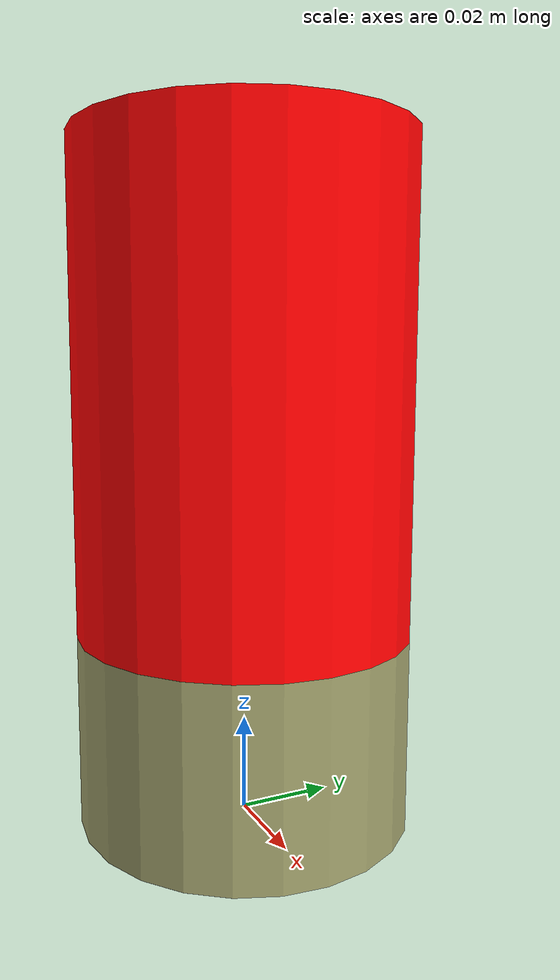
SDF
<?xml version='1.0'?>
<sdf version='1.7'>
<model name='light_fix'>
<pose> 0 0 0 0 0 0.29947514824797866 </pose>
  <static>false</static>
  <link name="base">
    <pose>0.0 0.0 0.02 0.0 0 0</pose>
    <collision name="collision">
      <geometry>
        <cylinder>
          <radius>.035</radius>
          <length>.04</length>
        </cylinder>
      </geometry>
    </collision>
    <inertial>
      <mass>10</mass>
      <inertia>
       <ixx>0.004395833333333333</ixx>
       <ixy>0.0</ixy>
       <ixz>0.0</ixz>
       <iyy>0.004395833333333333</iyy>
       <iyz>0.0</iyz>
       <izz>0.006125</izz>
     </inertia>
    </inertial>
    <visual name="visual">
      <geometry>
        <cylinder>
          <radius>.035</radius>
          <length>.04</length>
        </cylinder>
      </geometry>
      <material> <!-- LED material -->
        <ambient>0.6 0.6 0.4 1</ambient>
        <diffuse>0.6 0.6 0.4 1</diffuse>
        <specular>0.6 0.6 0.4 0</specular>
        <emissive>0.4 0.4 0.4 1</emissive>
      </material> <!-- End LED material -->
    </visual>
  </link>

  <link name="light">
    <pose>0 0. 0.09 0 0 0</pose>
    <collision name="collision">
      <geometry>
        <cylinder>
          <radius>.035</radius>
          <length>.1</length>
        </cylinder>
      </geometry>
    </collision>
    <inertial>
      <mass>10</mass>
      <inertia>
       <ixx>0.01139583333333333</ixx>
       <ixy>0.0</ixy>
       <ixz>0.0</ixz>
       <iyy>0.01139583333333333</iyy>
       <iyz>0.0</iyz>
       <izz>0.006125</izz>
     </inertia>
    </inertial>
    <visual name="visual">
      <cast_shadows>true</cast_shadows>
      <geometry>
        <cylinder>
          <radius>.035</radius>
          <length>.1</length>
        </cylinder>
      </geometry>
      <material> <!-- LED material -->
        <ambient>0.0 0.0 0.0 1</ambient>
        <diffuse>1.0 0 0 1</diffuse>
        <specular>0 0 0 0</specular>
        <emissive>1 0.75 0 1</emissive>
      </material> <!-- End LED material -->
    </visual>
    <sensor name='my_contact' type='contact'>
      <contact>
        <collision>collision</collision>
      </contact>
    </sensor>
  </link>

  <visual name="visual">
  </visual>

  <joint name="light_joint" type="fixed">
    <pose>0 0 -0.05 .0 0 0</pose>
    <child>light</child>
    <parent>base</parent>
  </joint>
</model>
</sdf>
